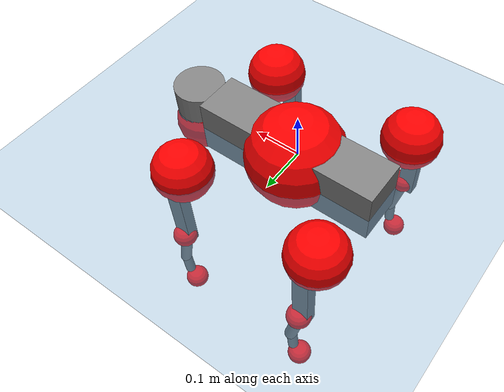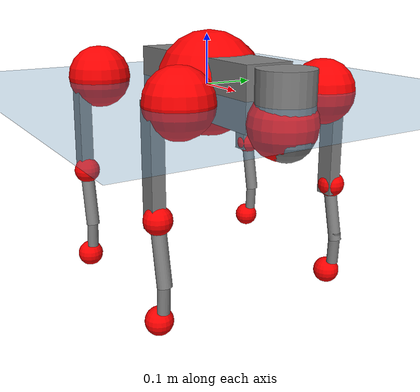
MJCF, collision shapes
<mujoco model="go2">
  <compiler angle="radian" assetdir="assets" balanceinertia="true" inertiafromgeom="false"/>

  <option timestep="0.005" density="1.2" viscosity="2e-05"/>

  <size nkey="1"/>

  <visual>
    <quality shadowsize="8192"/>
    <map shadowclip="0.5"/>
  </visual>

  <default>
    <default class="/">
      <geom contype="0" conaffinity="0" group="1" solref="-1000 -80"/>
      <site size="0.01 0.005 0.005" group="5"/>
      <general forcelimited="true" biastype="affine" gainprm="20" biasprm="0 -20 -0.5"/>
      <default class="go2">
        <joint armature="0.01" damping="0.01" frictionloss="0.2"/>
        <geom condim="1" margin="0.001"/>
        <default class="visual">
          <geom type="mesh" group="2"/>
        </default>
        <default class="collision">
          <geom group="3"/>
          <default class="foot">
            <geom size="0.022 0 0" condim="6" priority="1" friction="0.8 0.02 0.01" solimp="0.015 1 0.022"/>
          </default>
        </default>
        <default class="reward_collision_sphere">
          <geom group="5" rgba="1 0 0 1"/>
        </default>
      </default>
    </default>
  </default>

  <asset>
    <texture type="skybox" colorspace="auto" name="//unnamed_texture_0" builtin="gradient" rgb1="0.95 0.95 0.95" rgb2="0.95 0.95 0.95" width="100" height="600"/>
    <texture type="2d" colorspace="auto" name="texplane" builtin="checker" rgb1="0.345 0.575 0.748" rgb2="0.345 0.575 0.748" markrgb="1 1 1" width="512" height="512"/>
    <material name="MatPlane" class="/" texture="texplane" texuniform="true" texrepeat="2 2" specular="0.9"/>
    <material name="metal" class="/" rgba="0.9 0.95 0.95 1"/>
    <material name="black" class="/" rgba="0 0 0 1"/>
    <material name="white" class="/"/>
    <material name="gray" class="/" rgba="0.671705 0.692426 0.77427 1"/>
    <mesh name="base_0" class="/" file="base_0.obj"/>
    <mesh name="base_1" class="/" file="base_1.obj"/>
    <mesh name="base_2" class="/" file="base_2.obj"/>
    <mesh name="base_3" class="/" file="base_3.obj"/>
    <mesh name="base_4" class="/" file="base_4.obj"/>
    <mesh name="hip_0" class="/" file="hip_0.obj"/>
    <mesh name="hip_1" class="/" file="hip_1.obj"/>
    <mesh name="thigh_0" class="/" file="thigh_0.obj"/>
    <mesh name="thigh_1" class="/" file="thigh_1.obj"/>
    <mesh name="thigh_mirror_0" class="/" file="thigh_mirror_0.obj"/>
    <mesh name="thigh_mirror_1" class="/" file="thigh_mirror_1.obj"/>
    <mesh name="calf_0" class="/" file="calf_0.obj"/>
    <mesh name="calf_1" class="/" file="calf_1.obj"/>
    <mesh name="calf_mirror_0" class="/" file="calf_mirror_0.obj"/>
    <mesh name="calf_mirror_1" class="/" file="calf_mirror_1.obj"/>
    <mesh name="foot" class="/" file="foot.obj"/>
  </asset>

  <worldbody>
    <geom name="floor" class="/" size="100 100 0.125" type="plane" group="0" material="MatPlane"/>
    <light name="toplight_shadow" class="/" pos="0 0 5" dir="0.0990148 0.0990148 -0.990148" type="directional" ambient="0.04 0.04 0.04" diffuse="0.55 0.55 0.55" specular="0.12 0.12 0.12"/>
    <light name="toplight_fill" class="/" pos="0 0 5" dir="0.0990148 0.0990148 -0.990148" type="directional" castshadow="false" ambient="0.04 0.04 0.04" diffuse="0.3 0.3 0.3" specular="0.08 0.08 0.08"/>
    <body name="trunk" childclass="go2" pos="-0.000100737 0.00528434 0.00203989" quat="1 0.000109915 4.85413e-05 8.83693e-05">
      <inertial pos="0.0181423 0.00596133 -0.00484266" quat="-0.0287652 0.686219 -0.0162964 0.726644" mass="8.4137" diaginertia="0.0504142 0.569697 0.0147398"/>
      <joint name="//unnamed_joint_0" type="free" armature="0" damping="0" frictionloss="0"/>
      <geom name="//unnamed_geom_1" class="visual" material="black" mesh="base_0"/>
      <geom name="//unnamed_geom_2" class="visual" material="black" mesh="base_1"/>
      <geom name="//unnamed_geom_3" class="visual" material="black" mesh="base_2"/>
      <geom name="//unnamed_geom_4" class="visual" material="white" mesh="base_3"/>
      <geom name="//unnamed_geom_5" class="visual" material="gray" mesh="base_4"/>
      <geom name="trunk_1" class="collision" size="0.199416 0.0495625 0.0604292" type="box"/>
      <geom name="trunk_2" class="collision" size="0.053008 0.0477072" pos="0.244144 0 0.00902812" type="cylinder"/>
      <geom name="trunk_3" class="collision" size="0.0498276" pos="0.250997 0 -0.0541687"/>
      <geom name="//unnamed_geom_9" class="reward_collision_sphere" size="0.106016"/>
      <geom name="//unnamed_geom_10" class="reward_collision_sphere" size="0.0636096" pos="0.239861 0 -0.0406266"/>
      <site name="imu" pos="-0.0467112 -0.0135547 0.0645509" size="0.0106016"/>
      <camera name="track" pos="0 -2.84205 0" quat="0.707107 0.707107 0 0" mode="trackcom"/>
      <camera name="ego_camera" pos="0.267273 0 0.0406266" quat="-0.5 -0.5 0.5 0.5"/>
      <body name="FL_hip" pos="0.161885 0.0566086 -0.00753609" quat="0.999996 0.000640181 -0.00278575 2.83382e-05">
        <inertial pos="-0.00614524 0.00317215 -0.00234074" quat="0.500712 0.499957 0.509389 0.489749" mass="0.844641" diaginertia="0.00040692 0.00374887 0.000281645"/>
        <joint name="FL_hip_joint" pos="0 0 0" axis="0.999999 -0.00139741 -0.00043164" range="-1.24186 1.00204" armature="0.00980956" damping="0.0341206" frictionloss="0.170423"/>
        <geom name="//unnamed_geom_11" class="visual" material="metal" mesh="hip_0"/>
        <geom name="//unnamed_geom_12" class="visual" material="gray" mesh="hip_1"/>
        <geom name="//unnamed_geom_13" class="collision" size="0.0487674 0.0212032" pos="0 0.113682 0" quat="0.707107 0.707107 0 0" type="cylinder"/>
        <geom name="//unnamed_geom_14" class="reward_collision_sphere" size="0.0636096" pos="0 0.0994717 0"/>
        <body name="FL_thigh" pos="0.00148961 0.126234 -0.00140918" quat="0.999998 0.00176287 0.000340509 -0.00128343">
          <inertial pos="-0.00756679 -0.0348103 -0.0277296" quat="0.816418 0.105325 -0.00422829 0.567759" mass="1.37255" diaginertia="0.00287969 0.0343549 0.000537538"/>
          <joint name="FL_thigh_joint" pos="0 0 0" axis="-0.0188299 0.999612 -0.020501" range="-1.60508 3.33343" armature="0.00749369" damping="0.0174375" frictionloss="0.206555"/>
          <geom name="//unnamed_geom_15" class="visual" material="metal" mesh="thigh_0"/>
          <geom name="//unnamed_geom_16" class="visual" material="gray" mesh="thigh_1"/>
          <geom name="//unnamed_geom_17" class="collision" size="0.112907 0.012987 0.0180227" pos="0 0 -0.0961495" quat="0.707107 0 0.707107 0" type="box"/>
          <body name="FL_calf" pos="-0.00045666 0.00770434 -0.191857" quat="0.999999 -0.000377494 -0.000719083 0.000810987">
            <inertial pos="0.00170113 -0.00056987 -0.118649" quat="0.710702 0.00171014 -0.00451549 0.703476" mass="0.28134" diaginertia="0.000732949 0.0076297 3.53614e-05"/>
            <joint name="FL_calf_joint" pos="0 0 0" axis="-0.00539319 0.999973 0.00496802" range="-2.54781 -0.824136" armature="0.0124063" damping="0.00798965" frictionloss="0.218651"/>
            <geom name="//unnamed_geom_18" class="visual" material="gray" mesh="calf_0"/>
            <geom name="//unnamed_geom_19" class="visual" material="black" mesh="calf_1"/>
            <geom name="FL_calf0" class="collision" size="0.0127219 0.0636096" pos="0.00685316 0 -0.0541687" quat="0.994493 0 -0.104807 0" type="cylinder"/>
            <geom name="//unnamed_geom_21" class="collision" size="0.0116618 0.0344552" pos="0.0171329 0 -0.133616" quat="0.999688 0 0.0249974 0" type="cylinder"/>
            <geom name="//unnamed_geom_22" class="visual" pos="0 0 -0.192299" quat="1 0 0 0" material="black" mesh="foot"/>
            <geom name="FL_foot" class="foot" size="0.0230282" pos="-0.00171329 0 -0.192299"/>
            <geom name="//unnamed_geom_24" class="reward_collision_sphere" size="0.026504"/>
            <geom name="//unnamed_geom_25" class="reward_collision_sphere" size="0.026504" pos="-0.00171329 0 -0.192299"/>
            <site name="FL_foot" class="foot" pos="-0.00171329 0 -0.192299" size="0.0106016"/>
          </body>
        </body>
      </body>
      <body name="FR_hip" pos="0.169679 -0.064136 0.00188157" quat="1 3.57891e-05 -0.000946967 0.000298117">
        <inertial pos="-0.00415993 -0.00149443 0.00058611" quat="0.490878 0.510089 0.497693 0.501148" mass="0.898703" diaginertia="0.000417041 0.00397551 0.000274472"/>
        <joint name="FR_hip_joint" pos="0 0 0" axis="0.99982 0.0168764 -0.00869283" stiffness="0.00459516" range="-1.05064 1.0043" armature="0.0108449" damping="0.00944019" frictionloss="0.209293"/>
        <geom name="//unnamed_geom_26" class="visual" pos="0 4.51445e-09 1.93634e-07" quat="4.63268e-05 1 0 0" material="metal" mesh="hip_0"/>
        <geom name="//unnamed_geom_27" class="visual" pos="0 7.31846e-09 -4.78931e-07" quat="4.63268e-05 1 0 0" material="gray" mesh="hip_1"/>
        <geom name="//unnamed_geom_28" class="collision" size="0.0487674 0.0212032" pos="0 -0.113682 0" quat="0.707107 0.707107 0 0" type="cylinder"/>
        <geom name="//unnamed_geom_29" class="reward_collision_sphere" size="0.0636096" pos="0 -0.0994717 0"/>
        <body name="FR_thigh" pos="-0.00788767 -0.145004 -0.00909184" quat="1 -0.000878844 -0.000204649 8.15006e-05">
          <inertial pos="-0.00166688 0.0409099 -0.0313229" quat="0.559388 -0.0124013 0.0940388 0.823461" mass="1.19838" diaginertia="0.00260073 0.0310996 0.000491104"/>
          <joint name="FR_thigh_joint" pos="0 0 0" axis="0.00697276 -0.999975 -0.00126502" stiffness="0.00226047" range="-3.32906 1.57065" armature="0.0116968" damping="0.0120947" frictionloss="0.215708"/>
          <geom name="//unnamed_geom_30" class="visual" material="metal" mesh="thigh_mirror_0"/>
          <geom name="//unnamed_geom_31" class="visual" material="gray" mesh="thigh_mirror_1"/>
          <geom name="//unnamed_geom_32" class="collision" size="0.112907 0.012987 0.0180227" pos="0 0 -0.0961495" quat="0.707107 0 0.707107 0" type="box"/>
          <body name="FR_calf" pos="0.00804878 0.00196429 -0.188909" quat="0.999995 -0.00283439 -0.00064284 0.0015667">
            <inertial pos="0.00478941 0.000626396 -0.131775" quat="0.69718 -0.00705367 -0.0119497 0.716762" mass="0.295209" diaginertia="0.000697779 0.00845075 3.1945e-05"/>
            <joint name="FR_calf_joint" pos="0 0 0" axis="0.0443529 -0.998991 -0.00702436" stiffness="0.0233525" range="0.874962 2.76258" armature="0.0067569" damping="0" frictionloss="0.28046"/>
            <geom name="//unnamed_geom_33" class="visual" material="gray" mesh="calf_mirror_0"/>
            <geom name="//unnamed_geom_34" class="visual" material="black" mesh="calf_mirror_1"/>
            <geom name="FR_calf0" class="collision" size="0.0137821 0.0636096" pos="0.00856646 0 -0.0541687" quat="0.995004 0 -0.0998334 0" type="cylinder"/>
            <geom name="//unnamed_geom_36" class="collision" size="0.0116618 0.0344552" pos="0.0171329 0 -0.133616" quat="0.999688 0 0.0249974 0" type="cylinder"/>
            <geom name="//unnamed_geom_37" class="visual" pos="0 0 -0.192299" quat="1 0 0 0" material="black" mesh="foot"/>
            <geom name="FR_foot" class="foot" size="0.023505" pos="-0.00171329 0 -0.192299"/>
            <geom name="//unnamed_geom_39" class="reward_collision_sphere" size="0.026504"/>
            <geom name="//unnamed_geom_40" class="reward_collision_sphere" size="0.026504" pos="-0.00171329 0 -0.192299"/>
            <site name="FR_foot" class="foot" pos="-0.00171329 0 -0.192299" size="0.0106016"/>
          </body>
        </body>
      </body>
      <body name="RL_hip" pos="-0.163606 0.064321 0.000721779" quat="1 -3.06861e-05 -0.000102172 -0.000197304">
        <inertial pos="0.00448632 0.00872972 -0.00265974" quat="0.50631 0.499203 0.496706 0.497724" mass="0.800857" diaginertia="0.000400773 0.00339969 0.000282768"/>
        <joint name="RL_hip_joint" pos="0 0 0" axis="-0.999888 -0.00245045 0.0147663" range="-1.02575 1.06725" armature="0.0101199" damping="0.00607917" frictionloss="0.227161"/>
        <geom name="//unnamed_geom_41" class="visual" pos="4.02186e-10 0 7.88378e-08" quat="4.63268e-05 0 1 0" material="metal" mesh="hip_0"/>
        <geom name="//unnamed_geom_42" class="visual" pos="6.51992e-10 0 6.99179e-08" quat="4.63268e-05 0 1 0" material="gray" mesh="hip_1"/>
        <geom name="//unnamed_geom_43" class="collision" size="0.0487674 0.0212032" pos="0 0.113682 0" quat="0.707107 0.707107 0 0" type="cylinder"/>
        <geom name="//unnamed_geom_44" class="reward_collision_sphere" size="0.0636096" pos="0 0.0994717 0"/>
        <body name="RL_thigh" pos="0.00352955 0.13575 0.00861372" quat="1 -0.000635187 -0.000172713 -4.06958e-05">
          <inertial pos="-0.00303784 -0.0337022 -0.0213708" quat="0.832419 0.0968459 -0.0166777 0.545364" mass="1.20035" diaginertia="0.00270285 0.0331885 0.000510302"/>
          <joint name="RL_thigh_joint" pos="0 0 0" axis="-0.00172671 0.999708 -0.0241133" range="-0.41929 4.47197" armature="0.0109084" damping="0.0372299" frictionloss="0.190836"/>
          <geom name="//unnamed_geom_45" class="visual" material="metal" mesh="thigh_0"/>
          <geom name="//unnamed_geom_46" class="visual" material="gray" mesh="thigh_1"/>
          <geom name="//unnamed_geom_47" class="collision" size="0.112907 0.012987 0.0180227" pos="0 0 -0.0961495" quat="0.707107 0 0.707107 0" type="box"/>
          <body name="RL_calf" pos="0.00424694 0.00946006 -0.192655" quat="1 0.000125255 -4.81408e-05 0.000381246">
            <inertial pos="0.00328137 -0.000428438 -0.129631" quat="0.706876 -0.000356319 -0.0121547 0.707233" mass="0.265214" diaginertia="0.000605119 0.00795516 3.0391e-05"/>
            <joint name="RL_calf_joint" pos="0 0 0" axis="-0.0200312 0.999763 0.0084994" range="-2.9038 -0.736063" armature="0.011354" damping="0.0272914" frictionloss="0.201118"/>
            <geom name="//unnamed_geom_48" class="visual" material="gray" mesh="calf_0"/>
            <geom name="//unnamed_geom_49" class="visual" material="black" mesh="calf_1"/>
            <geom name="RL_calf0" class="collision" size="0.0137821 0.0636096" pos="0.00856646 0 -0.0541687" quat="0.995004 0 -0.0998334 0" type="cylinder"/>
            <geom name="//unnamed_geom_51" class="collision" size="0.0116618 0.0344552" pos="0.0171329 0 -0.133616" quat="0.999688 0 0.0249974 0" type="cylinder"/>
            <geom name="//unnamed_geom_52" class="visual" pos="0 0 -0.192299" quat="1 0 0 0" material="black" mesh="foot"/>
            <geom name="RL_foot" class="foot" size="0.0221352" pos="-0.00171329 0 -0.192299"/>
            <geom name="//unnamed_geom_54" class="reward_collision_sphere" size="0.026504"/>
            <geom name="//unnamed_geom_55" class="reward_collision_sphere" size="0.026504" pos="-0.00171329 0 -0.192299"/>
            <site name="RL_foot" class="foot" pos="-0.00171329 0 -0.192299" size="0.0106016"/>
          </body>
        </body>
      </body>
      <body name="RR_hip" pos="-0.165897 -0.0679173 0.0047964" quat="0.999995 -0.0031764 -0.00017925 -0.000668596">
        <inertial pos="0.0052187 -0.00911774 0.00364105" quat="0.49622 0.496355 0.498668 0.508652" mass="0.797512" diaginertia="0.00036906 0.00331138 0.000251114"/>
        <joint name="RR_hip_joint" pos="0 0 0" axis="-0.999375 -0.0307112 -0.0175047" range="-1.08698 1.1995" armature="0.0107303" damping="0.0106208" frictionloss="0.233291"/>
        <geom name="//unnamed_geom_56" class="visual" pos="-3.82647e-10 4.51445e-09 -1.14796e-07" quat="2.14617e-09 4.63268e-05 4.63268e-05 -1" material="metal" mesh="hip_0"/>
        <geom name="//unnamed_geom_57" class="visual" pos="-7.0032e-10 7.31846e-09 5.48849e-07" quat="2.14617e-09 4.63268e-05 4.63268e-05 -1" material="gray" mesh="hip_1"/>
        <geom name="//unnamed_geom_58" class="collision" size="0.0487674 0.0212032" pos="0 -0.113682 0" quat="0.707107 0.707107 0 0" type="cylinder"/>
        <geom name="//unnamed_geom_59" class="reward_collision_sphere" size="0.0636096" pos="0 -0.0994717 0"/>
        <body name="RR_thigh" pos="-0.000175132 -0.140282 -0.00341858" quat="0.999994 -0.00343609 -0.000448305 0.000722124">
          <inertial pos="-0.0030716 0.0390862 -0.0325888" quat="0.548963 -0.0225746 0.089269 0.830759" mass="1.45831" diaginertia="0.00292241 0.0358521 0.000548692"/>
          <joint name="RR_thigh_joint" pos="0 0 0" axis="-0.0367851 -0.999118 -0.0202571" stiffness="0.00272142" range="-4.50426 0.471633" armature="0.00964309" damping="0.0202722" frictionloss="0.228467"/>
          <geom name="//unnamed_geom_60" class="visual" material="metal" mesh="thigh_mirror_0"/>
          <geom name="//unnamed_geom_61" class="visual" material="gray" mesh="thigh_mirror_1"/>
          <geom name="//unnamed_geom_62" class="collision" size="0.112907 0.012987 0.0180227" pos="0 0 -0.0961495" quat="0.707107 0 0.707107 0" type="box"/>
          <body name="RR_calf" pos="0.0102742 0.000384111 -0.192865" quat="1 0.000594643 -0.00039637 0.000362514">
            <inertial pos="-0.0044094 0.000792563 -0.128321" quat="0.704213 -0.00452794 0.00453443 0.70996" mass="0.283746" diaginertia="0.00063014 0.00854065 3.27781e-05"/>
            <joint name="RR_calf_joint" pos="0 0 0" axis="-0.0405043 -0.99912 0.0108528" stiffness="0.0124565" range="0.960883 2.56704" armature="0.0146189" damping="0" frictionloss="0.219631"/>
            <geom name="//unnamed_geom_63" class="visual" material="gray" mesh="calf_mirror_0"/>
            <geom name="//unnamed_geom_64" class="visual" material="black" mesh="calf_mirror_1"/>
            <geom name="RR_calf0" class="collision" size="0.0137821 0.0636096" pos="0.00856646 0 -0.0541687" quat="0.995004 0 -0.0998334 0" type="cylinder"/>
            <geom name="//unnamed_geom_66" class="collision" size="0.0116618 0.0344552" pos="0.0171329 0 -0.133616" quat="0.999688 0 0.0249974 0" type="cylinder"/>
            <geom name="//unnamed_geom_67" class="visual" pos="0 0 -0.192299" quat="1 0 0 0" material="black" mesh="foot"/>
            <geom name="RR_foot" class="foot" size="0.0260034" pos="-0.00171329 0 -0.192299"/>
            <geom name="//unnamed_geom_69" class="reward_collision_sphere" size="0.026504"/>
            <geom name="//unnamed_geom_70" class="reward_collision_sphere" size="0.026504" pos="-0.00171329 0 -0.192299"/>
            <site name="RR_foot" class="foot" pos="-0.00171329 0 -0.192299" size="0.0106016"/>
          </body>
        </body>
      </body>
    </body>
  </worldbody>

  <contact>
    <pair class="/" geom1="floor" geom2="FL_foot" name="//unnamed_contact_0"/>
    <pair class="/" geom1="floor" geom2="FR_foot" name="//unnamed_contact_1"/>
    <pair class="/" geom1="floor" geom2="RL_foot" name="//unnamed_contact_2"/>
    <pair class="/" geom1="floor" geom2="RR_foot" name="//unnamed_contact_3"/>
  </contact>

  <actuator>
    <general name="FL_hip" class="/" joint="FL_hip_joint" forcerange="-16.1111 16.1111" gainprm="17.0141" biasprm="0 -17.0141 -0.525673"/>
    <general name="FL_thigh" class="/" joint="FL_thigh_joint" forcerange="-28.8288 28.8288" gainprm="17.0141" biasprm="0 -17.0141 -0.525673"/>
    <general name="FL_calf" class="/" joint="FL_calf_joint" forcerange="-47.6822 47.6822" gainprm="17.0141" biasprm="0 -17.0141 -0.525673"/>
    <general name="FR_hip" class="/" joint="FR_hip_joint" forcerange="-17.6258 17.6258" gainprm="17.0141" biasprm="0 -17.0141 -0.525673"/>
    <general name="FR_thigh" class="/" joint="FR_thigh_joint" forcerange="-17.59 17.59" gainprm="17.0141" biasprm="0 -17.0141 -0.525673"/>
    <general name="FR_calf" class="/" joint="FR_calf_joint" forcerange="-41.0769 41.0769" gainprm="17.0141" biasprm="0 -17.0141 -0.525673"/>
    <general name="RL_hip" class="/" joint="RL_hip_joint" forcerange="-24.1631 24.1631" gainprm="17.0141" biasprm="0 -17.0141 -0.525673"/>
    <general name="RL_thigh" class="/" joint="RL_thigh_joint" forcerange="-27.0854 27.0854" gainprm="17.0141" biasprm="0 -17.0141 -0.525673"/>
    <general name="RL_calf" class="/" joint="RL_calf_joint" forcerange="-53.4002 53.4002" gainprm="17.0141" biasprm="0 -17.0141 -0.525673"/>
    <general name="RR_hip" class="/" joint="RR_hip_joint" forcerange="-33.3581 33.3581" gainprm="17.0141" biasprm="0 -17.0141 -0.525673"/>
    <general name="RR_thigh" class="/" joint="RR_thigh_joint" forcerange="-23.3843 23.3843" gainprm="17.0141" biasprm="0 -17.0141 -0.525673"/>
    <general name="RR_calf" class="/" joint="RR_calf_joint" forcerange="-48.5109 48.5109" gainprm="17.0141" biasprm="0 -17.0141 -0.525673"/>
  </actuator>

  <sensor>
    <gyro site="imu" name="imu_angular_velocity"/>
    <velocimeter site="imu" name="imu_linear_velocity"/>
    <framelinvel objtype="site" objname="FL_foot" name="FL_foot_global_linear_velocity"/>
    <framelinvel objtype="site" objname="FR_foot" name="FR_foot_global_linear_velocity"/>
    <framelinvel objtype="site" objname="RL_foot" name="RL_foot_global_linear_velocity"/>
    <framelinvel objtype="site" objname="RR_foot" name="RR_foot_global_linear_velocity"/>
  </sensor>

  <keyframe>
    <key name="home" qpos="0 0 0.325 1 0 0 0 0.1 0.8 -1.5 -0.1 -0.8 1.5 -0.1 0.8 -1.5 0.1 -0.8 1.5"/>
  </keyframe>
</mujoco>
